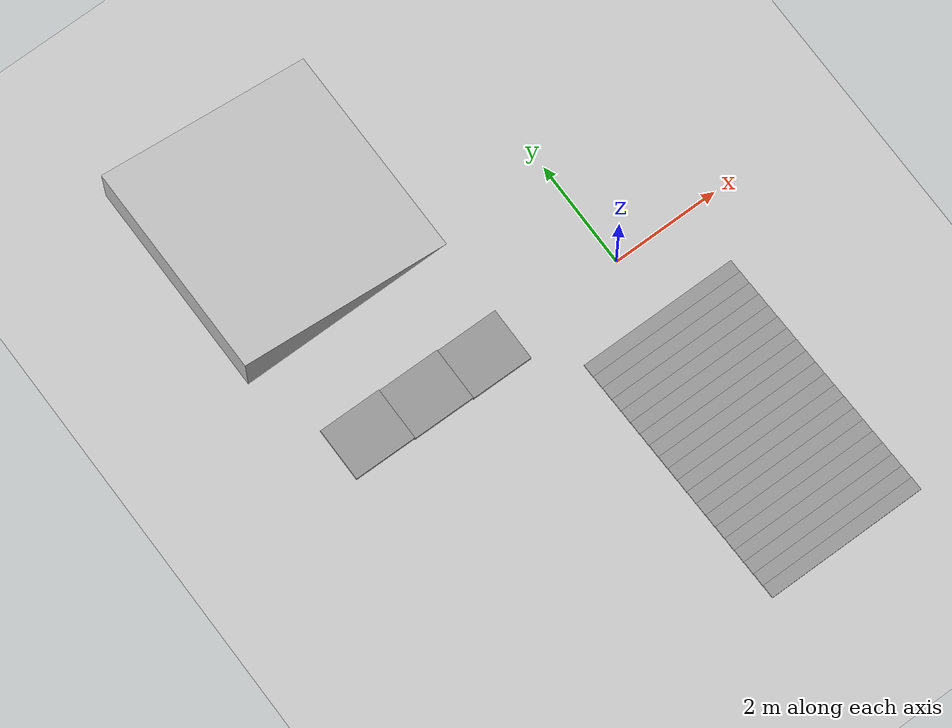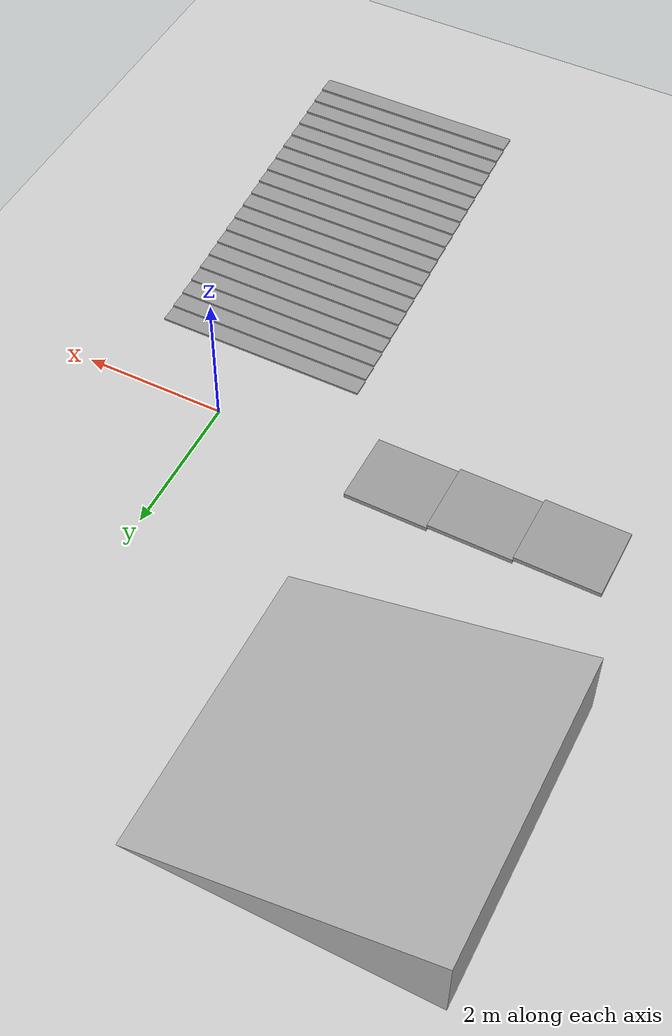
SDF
<sdf version="1.7">
 <world name="default">
  <model name="ground_plane">
   <static>1</static>
   <link name="link">
    <collision name="collision">
     <geometry><plane><normal>0 0 1</normal><size>100 100</size></plane></geometry>
     <surface>
      <contact><collide_bitmask>65535</collide_bitmask></contact>
      <friction><ode><mu>100</mu><mu2>50</mu2></ode></friction>
     </surface>
    </collision>
    <visual name="visual">
     <cast_shadows>0</cast_shadows>
     <geometry><plane><normal>0 0 1</normal><size>100 100</size></plane></geometry>
     <material>
      <script><uri>file://media/materials/scripts/gazebo.material</uri><name>Gazebo/Grey</name></script>
     </material>
    </visual>
   </link>
  </model>
  <model name="stair6">
   <pose>-3.15653 -0.743093 0 0 0 -1.57573</pose>
   <link name="Stairs_3">
    <visual name="Stairs_3_Visual_0">
     <pose>-0.75 0.456667 0.033333 0 -0 0</pose>
     <geometry><box><size>1 1.16667 0.066667</size></box></geometry>
     <material>
      <script><uri>file://media/materials/scripts/gazebo.material</uri><name>Gazebo/Grey</name></script>
      <ambient>1 1 1 1</ambient>
     </material>
     <meta><layer>0</layer></meta>
    </visual>
    <collision name="Stairs_3_Collision_0">
     <geometry><box><size>1 1.16667 0.066667</size></box></geometry>
     <pose>-0.75 0.456667 0.033333 0 -0 0</pose>
    </collision>
    <visual name="Stairs_3_Visual_1">
     <pose>-0.75 -0.71 0.1 0 -0 0</pose>
     <geometry><box><size>1 1.16667 0.066667</size></box></geometry>
     <material>
      <script><uri>file://media/materials/scripts/gazebo.material</uri><name>Gazebo/Grey</name></script>
      <ambient>1 1 1 1</ambient>
     </material>
     <meta><layer>0</layer></meta>
    </visual>
    <collision name="Stairs_3_Collision_1">
     <geometry><box><size>1 1.16667 0.066667</size></box></geometry>
     <pose>-0.75 -0.71 0.1 0 -0 0</pose>
    </collision>
    <visual name="Stairs_3_Visual_2">
     <pose>-0.75 -1.87667 0.166667 0 -0 0</pose>
     <geometry><box><size>1 1.16667 0.066667</size></box></geometry>
     <material>
      <script><uri>file://media/materials/scripts/gazebo.material</uri><name>Gazebo/Grey</name></script>
      <ambient>1 1 1 1</ambient>
     </material>
     <meta><layer>0</layer></meta>
    </visual>
    <collision name="Stairs_3_Collision_2">
     <geometry><box><size>1 1.16667 0.066667</size></box></geometry>
     <pose>-0.75 -1.87667 0.166667 0 -0 0</pose>
    </collision>
   </link>
   <static>1</static>
  </model>
  <model name="15_degree_ramp">
   <static>1</static>
   <link name="link">
    <collision name="collision">
     <geometry><mesh><uri>model://ramp_45/mesh/ramp_45.dae</uri><scale>2 2 0.5358</scale></mesh></geometry>
     <surface><friction><ode><mu>10</mu><mu2>10</mu2></ode></friction></surface>
    </collision>
    <visual name="visual">
     <geometry><mesh><uri>model://ramp_45/mesh/ramp_45.dae</uri><scale>2 2 0.5358</scale></mesh></geometry>
    </visual>
   </link>
   <pose>-4.06174 3.90017 0 0 -0 0</pose>
  </model>
  <model name="stair0.3">
   <pose>0.004873 -3.37116 -0 0 -0 0</pose>
   <link name="Stairs_1">
    <visual name="Stairs_1_Visual_0">
     <pose>0 2.145 0.015 0 -0 0</pose>
     <geometry><box><size>3 0.25 0.03</size></box></geometry>
     <material>
      <script><uri>file://media/materials/scripts/gazebo.material</uri><name>Gazebo/Grey</name></script>
      <ambient>1 1 1 1</ambient>
     </material>
     <meta><layer>0</layer></meta>
    </visual>
    <collision name="Stairs_1_Collision_0">
     <geometry><box><size>3 0.25 0.03</size></box></geometry>
     <pose>0 2.145 0.015 0 -0 0</pose>
    </collision>
    <visual name="Stairs_1_Visual_1">
     <pose>0 1.895 0.045 0 -0 0</pose>
     <geometry><box><size>3 0.25 0.03</size></box></geometry>
     <material>
      <script><uri>file://media/materials/scripts/gazebo.material</uri><name>Gazebo/Grey</name></script>
      <ambient>1 1 1 1</ambient>
     </material>
     <meta><layer>0</layer></meta>
    </visual>
    <collision name="Stairs_1_Collision_1">
     <geometry><box><size>3 0.25 0.03</size></box></geometry>
     <pose>0 1.895 0.045 0 -0 0</pose>
    </collision>
    <visual name="Stairs_1_Visual_2">
     <pose>0 1.645 0.075 0 -0 0</pose>
     <geometry><box><size>3 0.25 0.03</size></box></geometry>
     <material>
      <script><uri>file://media/materials/scripts/gazebo.material</uri><name>Gazebo/Grey</name></script>
      <ambient>1 1 1 1</ambient>
     </material>
     <meta><layer>0</layer></meta>
    </visual>
    <collision name="Stairs_1_Collision_2">
     <geometry><box><size>3 0.25 0.03</size></box></geometry>
     <pose>0 1.645 0.075 0 -0 0</pose>
    </collision>
    <visual name="Stairs_1_Visual_3">
     <pose>0 1.395 0.105 0 -0 0</pose>
     <geometry><box><size>3 0.25 0.03</size></box></geometry>
     <material>
      <script><uri>file://media/materials/scripts/gazebo.material</uri><name>Gazebo/Grey</name></script>
      <ambient>1 1 1 1</ambient>
     </material>
     <meta><layer>0</layer></meta>
    </visual>
    <collision name="Stairs_1_Collision_3">
     <geometry><box><size>3 0.25 0.03</size></box></geometry>
     <pose>0 1.395 0.105 0 -0 0</pose>
    </collision>
    <visual name="Stairs_1_Visual_4">
     <pose>0 1.145 0.135 0 -0 0</pose>
     <geometry><box><size>3 0.25 0.03</size></box></geometry>
     <material>
      <script><uri>file://media/materials/scripts/gazebo.material</uri><name>Gazebo/Grey</name></script>
      <ambient>1 1 1 1</ambient>
     </material>
     <meta><layer>0</layer></meta>
    </visual>
    <collision name="Stairs_1_Collision_4">
     <geometry><box><size>3 0.25 0.03</size></box></geometry>
     <pose>0 1.145 0.135 0 -0 0</pose>
    </collision>
    <visual name="Stairs_1_Visual_5">
     <pose>0 0.895 0.165 0 -0 0</pose>
     <geometry><box><size>3 0.25 0.03</size></box></geometry>
     <material>
      <script><uri>file://media/materials/scripts/gazebo.material</uri><name>Gazebo/Grey</name></script>
      <ambient>1 1 1 1</ambient>
     </material>
     <meta><layer>0</layer></meta>
    </visual>
    <collision name="Stairs_1_Collision_5">
     <geometry><box><size>3 0.25 0.03</size></box></geometry>
     <pose>0 0.895 0.165 0 -0 0</pose>
    </collision>
    <visual name="Stairs_1_Visual_6">
     <pose>0 0.645 0.195 0 -0 0</pose>
     <geometry><box><size>3 0.25 0.03</size></box></geometry>
     <material>
      <script><uri>file://media/materials/scripts/gazebo.material</uri><name>Gazebo/Grey</name></script>
      <ambient>1 1 1 1</ambient>
     </material>
     <meta><layer>0</layer></meta>
    </visual>
    <collision name="Stairs_1_Collision_6">
     <geometry><box><size>3 0.25 0.03</size></box></geometry>
     <pose>0 0.645 0.195 0 -0 0</pose>
    </collision>
    <visual name="Stairs_1_Visual_7">
     <pose>0 0.395 0.225 0 -0 0</pose>
     <geometry><box><size>3 0.25 0.03</size></box></geometry>
     <material>
      <script><uri>file://media/materials/scripts/gazebo.material</uri><name>Gazebo/Grey</name></script>
      <ambient>1 1 1 1</ambient>
     </material>
     <meta><layer>0</layer></meta>
    </visual>
    <collision name="Stairs_1_Collision_7">
     <geometry><box><size>3 0.25 0.03</size></box></geometry>
     <pose>0 0.395 0.225 0 -0 0</pose>
    </collision>
    <visual name="Stairs_1_Visual_8">
     <pose>0 0.145 0.255 0 -0 0</pose>
     <geometry><box><size>3 0.25 0.03</size></box></geometry>
     <material>
      <script><uri>file://media/materials/scripts/gazebo.material</uri><name>Gazebo/Grey</name></script>
      <ambient>1 1 1 1</ambient>
     </material>
     <meta><layer>0</layer></meta>
    </visual>
    <collision name="Stairs_1_Collision_8">
     <geometry><box><size>3 0.25 0.03</size></box></geometry>
     <pose>0 0.145 0.255 0 -0 0</pose>
    </collision>
    <visual name="Stairs_1_Visual_9">
     <pose>0 -0.105 0.285 0 -0 0</pose>
     <geometry><box><size>3 0.25 0.03</size></box></geometry>
     <material>
      <script><uri>file://media/materials/scripts/gazebo.material</uri><name>Gazebo/Grey</name></script>
      <ambient>1 1 1 1</ambient>
     </material>
     <meta><layer>0</layer></meta>
    </visual>
    <collision name="Stairs_1_Collision_9">
     <geometry><box><size>3 0.25 0.03</size></box></geometry>
     <pose>0 -0.105 0.285 0 -0 0</pose>
    </collision>
    <visual name="Stairs_1_Visual_10">
     <pose>0 -0.355 0.315 0 -0 0</pose>
     <geometry><box><size>3 0.25 0.03</size></box></geometry>
     <material>
      <script><uri>file://media/materials/scripts/gazebo.material</uri><name>Gazebo/Grey</name></script>
      <ambient>1 1 1 1</ambient>
     </material>
     <meta><layer>0</layer></meta>
    </visual>
    <collision name="Stairs_1_Collision_10">
     <geometry><box><size>3 0.25 0.03</size></box></geometry>
     <pose>0 -0.355 0.315 0 -0 0</pose>
    </collision>
    <visual name="Stairs_1_Visual_11">
     <pose>0 -0.605 0.345 0 -0 0</pose>
     <geometry><box><size>3 0.25 0.03</size></box></geometry>
     <material>
      <script><uri>file://media/materials/scripts/gazebo.material</uri><name>Gazebo/Grey</name></script>
      <ambient>1 1 1 1</ambient>
     </material>
     <meta><layer>0</layer></meta>
    </visual>
    <collision name="Stairs_1_Collision_11">
     <geometry><box><size>3 0.25 0.03</size></box></geometry>
     <pose>0 -0.605 0.345 0 -0 0</pose>
    </collision>
    <visual name="Stairs_1_Visual_12">
     <pose>0 -0.855 0.375 0 -0 0</pose>
     <geometry><box><size>3 0.25 0.03</size></box></geometry>
     <material>
      <script><uri>file://media/materials/scripts/gazebo.material</uri><name>Gazebo/Grey</name></script>
      <ambient>1 1 1 1</ambient>
     </material>
     <meta><layer>0</layer></meta>
    </visual>
    <collision name="Stairs_1_Collision_12">
     <geometry><box><size>3 0.25 0.03</size></box></geometry>
     <pose>0 -0.855 0.375 0 -0 0</pose>
    </collision>
    <visual name="Stairs_1_Visual_13">
     <pose>0 -1.105 0.405 0 -0 0</pose>
     <geometry><box><size>3 0.25 0.03</size></box></geometry>
     <material>
      <script><uri>file://media/materials/scripts/gazebo.material</uri><name>Gazebo/Grey</name></script>
      <ambient>1 1 1 1</ambient>
     </material>
     <meta><layer>0</layer></meta>
    </visual>
    <collision name="Stairs_1_Collision_13">
     <geometry><box><size>3 0.25 0.03</size></box></geometry>
     <pose>0 -1.105 0.405 0 -0 0</pose>
    </collision>
    <visual name="Stairs_1_Visual_14">
     <pose>0 -1.355 0.435 0 -0 0</pose>
     <geometry><box><size>3 0.25 0.03</size></box></geometry>
     <material>
      <script><uri>file://media/materials/scripts/gazebo.material</uri><name>Gazebo/Grey</name></script>
      <ambient>1 1 1 1</ambient>
     </material>
     <meta><layer>0</layer></meta>
    </visual>
    <collision name="Stairs_1_Collision_14">
     <geometry><box><size>3 0.25 0.03</size></box></geometry>
     <pose>0 -1.355 0.435 0 -0 0</pose>
    </collision>
    <visual name="Stairs_1_Visual_15">
     <pose>0 -1.605 0.465 0 -0 0</pose>
     <geometry><box><size>3 0.25 0.03</size></box></geometry>
     <material>
      <script><uri>file://media/materials/scripts/gazebo.material</uri><name>Gazebo/Grey</name></script>
      <ambient>1 1 1 1</ambient>
     </material>
     <meta><layer>0</layer></meta>
    </visual>
    <collision name="Stairs_1_Collision_15">
     <geometry><box><size>3 0.25 0.03</size></box></geometry>
     <pose>0 -1.605 0.465 0 -0 0</pose>
    </collision>
    <visual name="Stairs_1_Visual_16">
     <pose>0 -1.855 0.495 0 -0 0</pose>
     <geometry><box><size>3 0.25 0.03</size></box></geometry>
     <material>
      <script><uri>file://media/materials/scripts/gazebo.material</uri><name>Gazebo/Grey</name></script>
      <ambient>1 1 1 1</ambient>
     </material>
     <meta><layer>0</layer></meta>
    </visual>
    <collision name="Stairs_1_Collision_16">
     <geometry><box><size>3 0.25 0.03</size></box></geometry>
     <pose>0 -1.855 0.495 0 -0 0</pose>
    </collision>
    <visual name="Stairs_1_Visual_17">
     <pose>0 -2.105 0.525 0 -0 0</pose>
     <geometry><box><size>3 0.25 0.03</size></box></geometry>
     <material>
      <script><uri>file://media/materials/scripts/gazebo.material</uri><name>Gazebo/Grey</name></script>
      <ambient>1 1 1 1</ambient>
     </material>
     <meta><layer>0</layer></meta>
    </visual>
    <collision name="Stairs_1_Collision_17">
     <geometry><box><size>3 0.25 0.03</size></box></geometry>
     <pose>0 -2.105 0.525 0 -0 0</pose>
    </collision>
    <visual name="Stairs_1_Visual_18">
     <pose>0 -2.355 0.555 0 -0 0</pose>
     <geometry><box><size>3 0.25 0.03</size></box></geometry>
     <material>
      <script><uri>file://media/materials/scripts/gazebo.material</uri><name>Gazebo/Grey</name></script>
      <ambient>1 1 1 1</ambient>
     </material>
     <meta><layer>0</layer></meta>
    </visual>
    <collision name="Stairs_1_Collision_18">
     <geometry><box><size>3 0.25 0.03</size></box></geometry>
     <pose>0 -2.355 0.555 0 -0 0</pose>
    </collision>
    <visual name="Stairs_1_Visual_19">
     <pose>0 -2.605 0.585 0 -0 0</pose>
     <geometry><box><size>3 0.25 0.03</size></box></geometry>
     <material>
      <script><uri>file://media/materials/scripts/gazebo.material</uri><name>Gazebo/Grey</name></script>
      <ambient>1 1 1 1</ambient>
     </material>
     <meta><layer>0</layer></meta>
    </visual>
    <collision name="Stairs_1_Collision_19">
     <geometry><box><size>3 0.25 0.03</size></box></geometry>
     <pose>0 -2.605 0.585 0 -0 0</pose>
    </collision>
   </link>
   <static>1</static>
  </model>
 </world>
</sdf>
